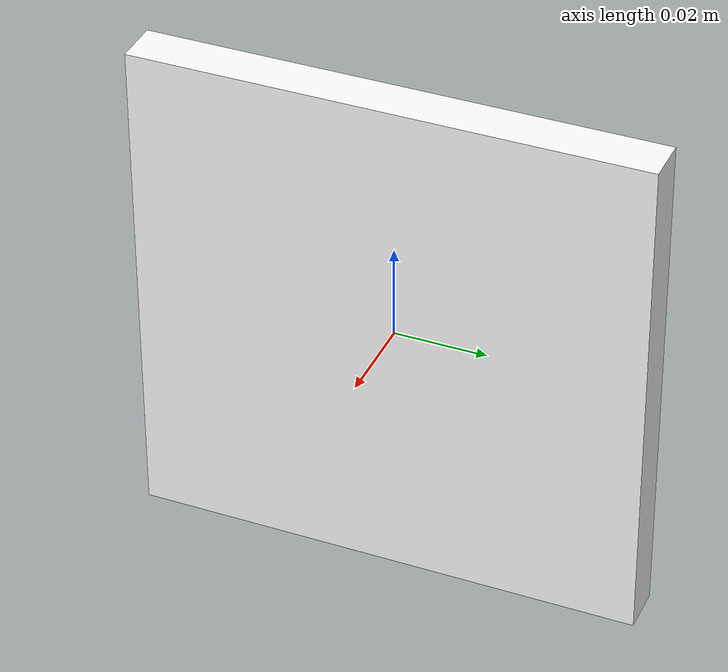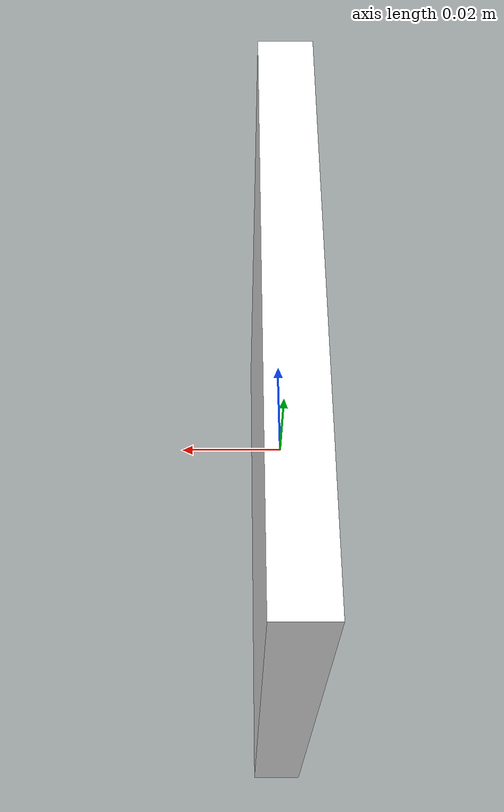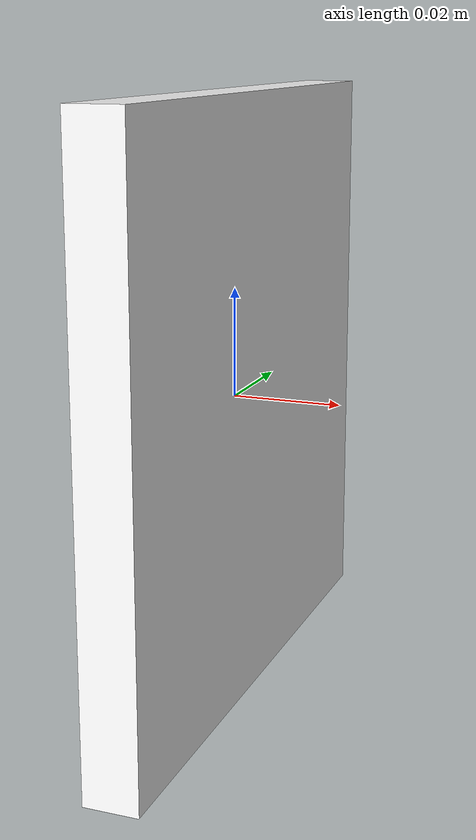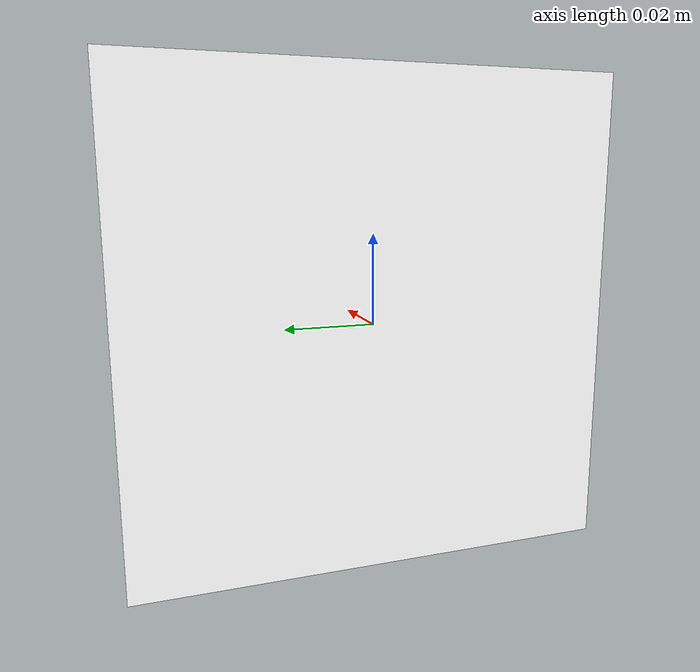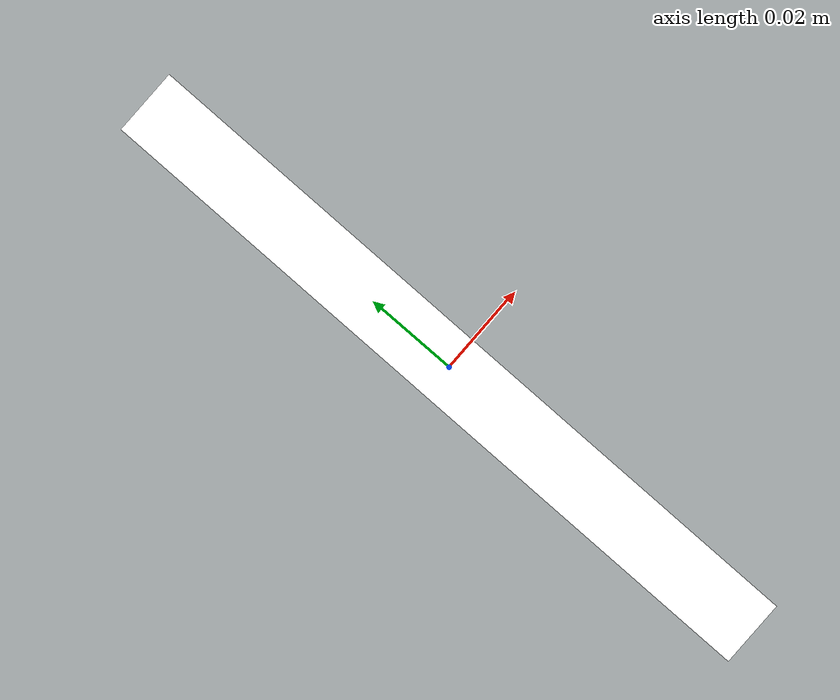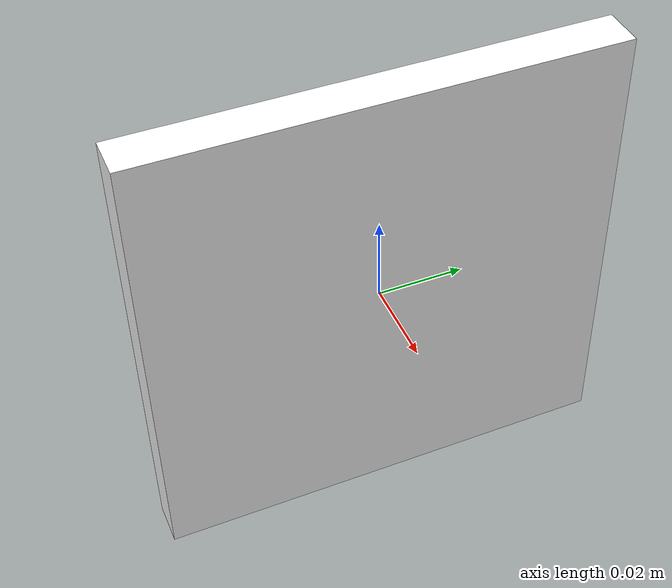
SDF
<?xml version="1.0"?>
<sdf version="1.6">
  <model name="rust_defect_03">
    <link name="main">
      <pose frame="">0 0 0 0 1.57 0</pose>
      <visual name="main_Visual">
        <geometry>
          <box>
            <size>0.110 0.110 0.01</size>
          </box>
        </geometry>
        <material>
          <ambient>1. 1.0 1. 1.0</ambient>
          <diffuse>1. 1.0 1. 1.0</diffuse>
          <specular>0.1 0.1 0.1 1.0</specular>
          <pbr>
            <metal>
              <albedo_map>
                model://rust_defect_03/materials/textures/rust_defect_03.png</albedo_map>
            </metal>
          </pbr>
        </material>
      </visual>
    </link>
    <static>1</static>
  </model>
</sdf>
